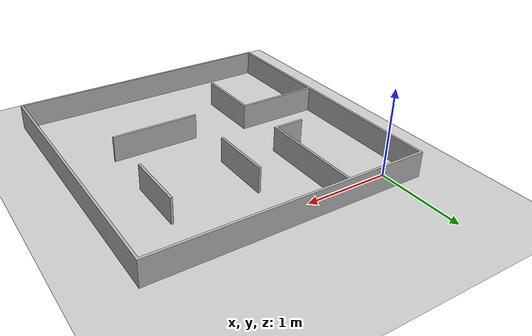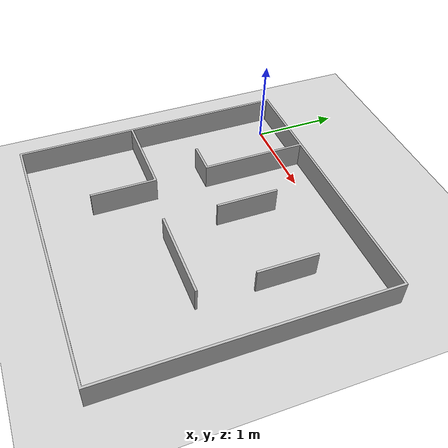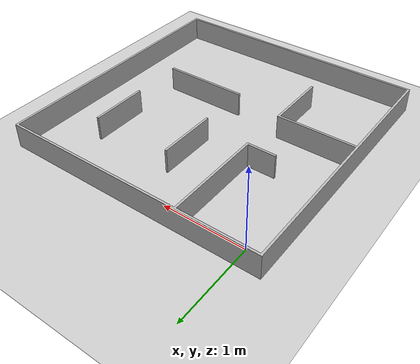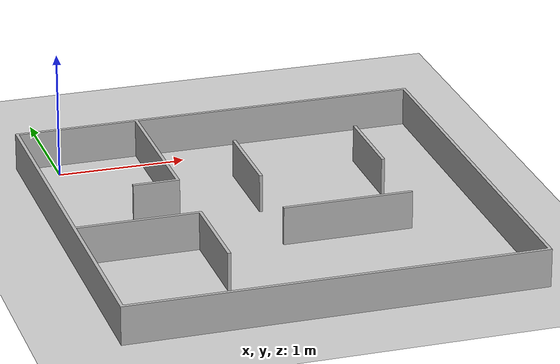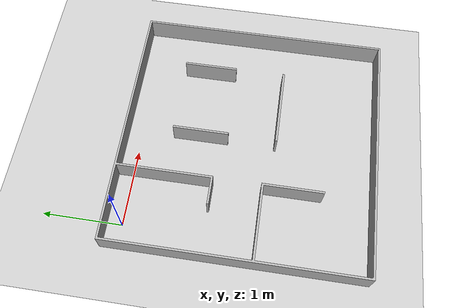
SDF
<sdf version="1.6">
 <world name="default">
  <model name="ground_plane">
   <static>1</static>
   <link name="link">
    <collision name="collision">
     <geometry><plane><normal>0 0 1</normal><size>100 100</size></plane></geometry>
     <surface>
      <contact><collide_bitmask>65535</collide_bitmask></contact>
      <friction><ode><mu>100</mu><mu2>50</mu2></ode></friction>
     </surface>
    </collision>
    <visual name="visual">
     <cast_shadows>0</cast_shadows>
     <geometry><plane><normal>0 0 1</normal><size>100 100</size></plane></geometry>
     <material>
      <script><uri>file://media/materials/scripts/gazebo.material</uri><name>Gazebo/Grey</name></script>
     </material>
    </visual>
   </link>
  </model>
  <light name="sun" type="directional">
   <pose>0 0 10 0 -0 0</pose>
   <diffuse>0.8 0.8 0.8 1</diffuse>
   <specular>0.2 0.2 0.2 1</specular>
   <attenuation>
    <range>1000</range>
    <constant>0.9</constant>
    <linear>0.01</linear>
    <quadratic>0.001</quadratic>
   </attenuation>
   <direction>-0.5 0.1 -0.9</direction>
  </light>
  <model name="map_default">
   <pose>-0.299168 0.212582 0 0 -0 0</pose>
   <static>1</static>
   <link name="map_default">
    <inertial>
     <mass>50</mass>
     <inertia><ixx>26.0017</ixx><ixy>0</ixy><ixz>0</ixz><iyy>51.2533</iyy><iyz>0</iyz><izz>26.0017</izz></inertia>
    </inertial>
    <visual name="map_default_visual">
     <geometry>
      <mesh><uri>model://oped_gazebo/worlds/map_default.stl</uri><scale>1.3 1.3 1.0</scale></mesh>
     </geometry>
    </visual>
    <collision name="map_default_coliision">
     <geometry>
      <mesh><uri>model://oped_gazebo/worlds/map_default.stl</uri><scale>1.3 1.3 1.0</scale></mesh>
     </geometry>
    </collision>
   </link>
  </model>
  <gravity>0 0 -9.8</gravity>
  <magnetic_field>6e-06 2.3e-05 -4.2e-05</magnetic_field>
  <atmosphere type="adiabatic"/>
  <physics name="default_physics" default="0" type="ode">
   <max_step_size>0.001</max_step_size>
   <real_time_factor>1</real_time_factor>
   <real_time_update_rate>1000</real_time_update_rate>
  </physics>
  <scene><ambient>0.4 0.4 0.4 1</ambient><background>0.7 0.7 0.7 1</background><shadows>1</shadows></scene>
  <spherical_coordinates>
   <surface_model>EARTH_WGS84</surface_model>
   <latitude_deg>0</latitude_deg>
   <longitude_deg>0</longitude_deg>
   <elevation>0</elevation>
   <heading_deg>0</heading_deg>
  </spherical_coordinates>
 </world>
</sdf>
